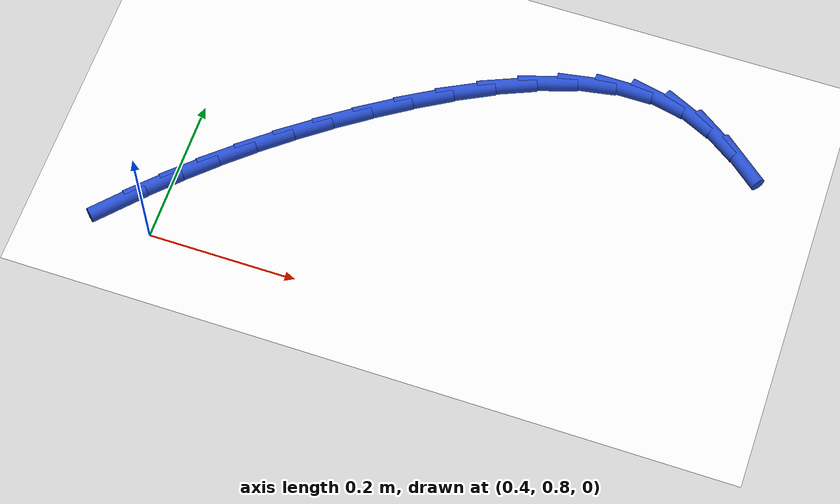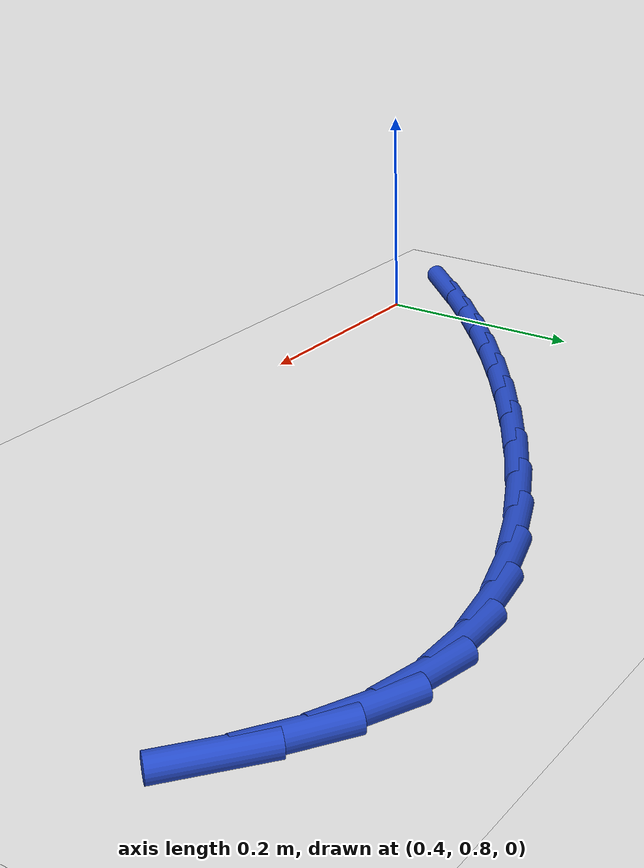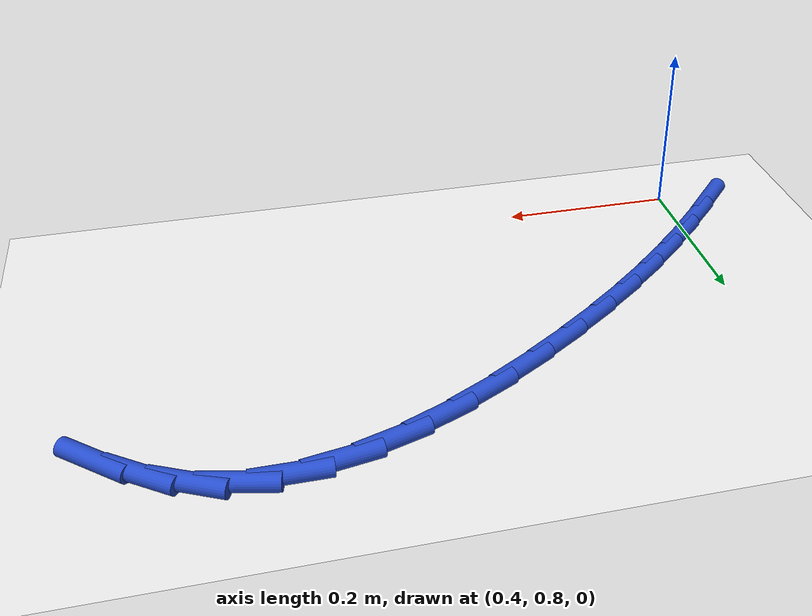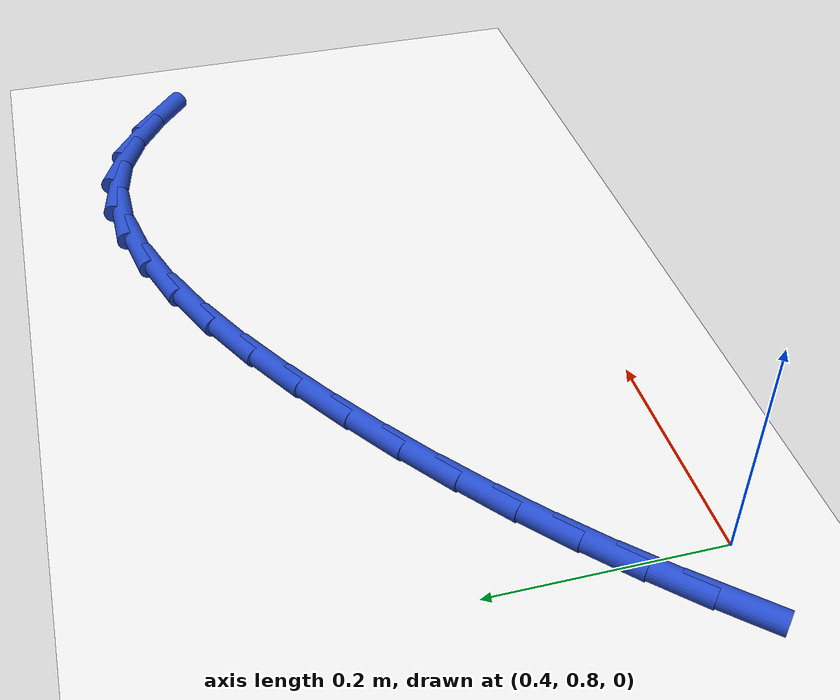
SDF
<sdf version="1.6">
 <world name="default">
  <model name="ground_plane">
   <static>1</static>
   <link name="link">
    <collision name="collision">
     <geometry><plane><normal>0 0 1</normal><size>100 100</size></plane></geometry>
     <surface><friction><ode><mu>100</mu><mu2>50</mu2></ode></friction></surface>
    </collision>
    <visual name="visual">
     <cast_shadows>0</cast_shadows>
     <geometry><plane><normal>0 0 1</normal><size>100 100</size></plane></geometry>
     <material>
      <script><uri>file://media/materials/scripts/gazebo.material</uri><name>Gazebo/WhiteGlow</name></script>
     </material>
    </visual>
   </link>
  </model>
  <model name="line">
   <link name="link_18">
    <pose>0.3453186416303858 0.826814166103038 0.01 0 1.57 0.8242871862611012</pose>
    <collision name="collision">
     <geometry><cylinder><radius>0.01</radius><length>0.08</length></cylinder></geometry>
    </collision>
    <visual name="visual">
     <material>
      <script><name>Gazebo/Blue</name><uri>file://media/materials/scripts/gazebo.material</uri></script>
     </material>
     <geometry><cylinder><radius>0.01</radius><length>0.08</length></cylinder></geometry>
    </visual>
   </link>
   <link name="link_19">
    <pose>0.3801583682014533 0.8644747823710415 0.01 0 1.57 0.7873593468600117</pose>
    <collision name="collision">
     <geometry><cylinder><radius>0.01</radius><length>0.08</length></cylinder></geometry>
    </collision>
    <visual name="visual">
     <material>
      <script><name>Gazebo/Blue</name><uri>file://media/materials/scripts/gazebo.material</uri></script>
     </material>
     <geometry><cylinder><radius>0.01</radius><length>0.08</length></cylinder></geometry>
    </visual>
   </link>
   <link name="link_20">
    <pose>0.4167065320608964 0.9011665834226212 0.01 0 1.57 0.7506752435736888</pose>
    <collision name="collision">
     <geometry><cylinder><radius>0.01</radius><length>0.08</length></cylinder></geometry>
    </collision>
    <visual name="visual">
     <material>
      <script><name>Gazebo/Blue</name><uri>file://media/materials/scripts/gazebo.material</uri></script>
     </material>
     <geometry><cylinder><radius>0.01</radius><length>0.08</length></cylinder></geometry>
    </visual>
   </link>
   <link name="link_21">
    <pose>0.4549905870882065 0.9368801904338604 0.01 0 1.57 0.7143514136931837</pose>
    <collision name="collision">
     <geometry><cylinder><radius>0.01</radius><length>0.08</length></cylinder></geometry>
    </collision>
    <visual name="visual">
     <material>
      <script><name>Gazebo/Blue</name><uri>file://media/materials/scripts/gazebo.material</uri></script>
     </material>
     <geometry><cylinder><radius>0.01</radius><length>0.08</length></cylinder></geometry>
    </visual>
   </link>
   <link name="link_22">
    <pose>0.4950379871628757 0.9716062245808422 0.01 0 1.57 0.6784973580704299</pose>
    <collision name="collision">
     <geometry><cylinder><radius>0.01</radius><length>0.08</length></cylinder></geometry>
    </collision>
    <visual name="visual">
     <material>
      <script><name>Gazebo/Blue</name><uri>file://media/materials/scripts/gazebo.material</uri></script>
     </material>
     <geometry><cylinder><radius>0.01</radius><length>0.08</length></cylinder></geometry>
    </visual>
   </link>
   <link name="link_23">
    <pose>0.5368761861643954 1.0053353070396502 0.01 0 1.57 0.6432139044689602</pose>
    <collision name="collision">
     <geometry><cylinder><radius>0.01</radius><length>0.08</length></cylinder></geometry>
    </collision>
    <visual name="visual">
     <material>
      <script><name>Gazebo/Blue</name><uri>file://media/materials/scripts/gazebo.material</uri></script>
     </material>
     <geometry><cylinder><radius>0.01</radius><length>0.08</length></cylinder></geometry>
    </visual>
   </link>
   <link name="link_24">
    <pose>0.5805326379722575 1.0380580589863673 0.01 0 1.57 0.6085919270302591</pose>
    <collision name="collision">
     <geometry><cylinder><radius>0.01</radius><length>0.08</length></cylinder></geometry>
    </collision>
    <visual name="visual">
     <material>
      <script><name>Gazebo/Blue</name><uri>file://media/materials/scripts/gazebo.material</uri></script>
     </material>
     <geometry><cylinder><radius>0.01</radius><length>0.08</length></cylinder></geometry>
    </visual>
   </link>
   <link name="link_25">
    <pose>0.6260347964659538 1.0697651015970766 0.01 0 1.57 0.5744846938816968</pose>
    <collision name="collision">
     <geometry><cylinder><radius>0.01</radius><length>0.08</length></cylinder></geometry>
    </collision>
    <visual name="visual">
     <material>
      <script><name>Gazebo/Blue</name><uri>file://media/materials/scripts/gazebo.material</uri></script>
     </material>
     <geometry><cylinder><radius>0.01</radius><length>0.08</length></cylinder></geometry>
    </visual>
   </link>
   <link name="link_26">
    <pose>0.673399442512721 1.1004249011869518 0.01 0 1.57 0.5342905004151267</pose>
    <collision name="collision">
     <geometry><cylinder><radius>0.01</radius><length>0.08</length></cylinder></geometry>
    </collision>
    <visual name="visual">
     <material>
      <script><name>Gazebo/Blue</name><uri>file://media/materials/scripts/gazebo.material</uri></script>
     </material>
     <geometry><cylinder><radius>0.01</radius><length>0.08</length></cylinder></geometry>
    </visual>
   </link>
   <link name="link_27">
    <pose>0.7223444225763069 1.1293854010199205 0.01 0 1.57 0.4789846975595859</pose>
    <collision name="collision">
     <geometry><cylinder><radius>0.01</radius><length>0.08</length></cylinder></geometry>
    </collision>
    <visual name="visual">
     <material>
      <script><name>Gazebo/Blue</name><uri>file://media/materials/scripts/gazebo.material</uri></script>
     </material>
     <geometry><cylinder><radius>0.01</radius><length>0.08</length></cylinder></geometry>
    </visual>
   </link>
   <link name="link_28">
    <pose>0.7722555397671594 1.1553052943026003 0.01 0 1.57 0.40435603368860207</pose>
    <collision name="collision">
     <geometry><cylinder><radius>0.01</radius><length>0.08</length></cylinder></geometry>
    </collision>
    <visual name="visual">
     <material>
      <script><name>Gazebo/Blue</name><uri>file://media/materials/scripts/gazebo.material</uri></script>
     </material>
     <geometry><cylinder><radius>0.01</radius><length>0.08</length></cylinder></geometry>
    </visual>
   </link>
   <link name="link_29">
    <pose>0.8225012794813981 1.176807326418911 0.01 0 1.57 0.304669524520477</pose>
    <collision name="collision">
     <geometry><cylinder><radius>0.01</radius><length>0.08</length></cylinder></geometry>
    </collision>
    <visual name="visual">
     <material>
      <script><name>Gazebo/Blue</name><uri>file://media/materials/scripts/gazebo.material</uri></script>
     </material>
     <geometry><cylinder><radius>0.01</radius><length>0.08</length></cylinder></geometry>
    </visual>
   </link>
   <link name="link_30">
    <pose>0.8724501271151436 1.1925142427527737 0.01 0 1.57 0.17237400252887308</pose>
    <collision name="collision">
     <geometry><cylinder><radius>0.01</radius><length>0.08</length></cylinder></geometry>
    </collision>
    <visual name="visual">
     <material>
      <script><name>Gazebo/Blue</name><uri>file://media/materials/scripts/gazebo.material</uri></script>
     </material>
     <geometry><cylinder><radius>0.01</radius><length>0.08</length></cylinder></geometry>
    </visual>
   </link>
   <link name="link_31">
    <pose>0.9214705680645162 1.201048788688109 0.01 0 1.57 -0.0003177183661695332</pose>
    <collision name="collision">
     <geometry><cylinder><radius>0.01</radius><length>0.08</length></cylinder></geometry>
    </collision>
    <visual name="visual">
     <material>
      <script><name>Gazebo/Blue</name><uri>file://media/materials/scripts/gazebo.material</uri></script>
     </material>
     <geometry><cylinder><radius>0.01</radius><length>0.08</length></cylinder></geometry>
    </visual>
   </link>
   <link name="link_32">
    <pose>0.9689310877256362 1.2010337096088373 0.01 0 1.57 -0.21611326726454302</pose>
    <collision name="collision">
     <geometry><cylinder><radius>0.01</radius><length>0.08</length></cylinder></geometry>
    </collision>
    <visual name="visual">
     <material>
      <script><name>Gazebo/Blue</name><uri>file://media/materials/scripts/gazebo.material</uri></script>
     </material>
     <geometry><cylinder><radius>0.01</radius><length>0.08</length></cylinder></geometry>
    </visual>
   </link>
   <link name="link_33">
    <pose>1.014201276463728 1.1910950084566505 0.01 0 1.57 -0.44000558929535444</pose>
    <collision name="collision">
     <geometry><cylinder><radius>0.01</radius><length>0.08</length></cylinder></geometry>
    </collision>
    <visual name="visual">
     <material>
      <script><name>Gazebo/Blue</name><uri>file://media/materials/scripts/gazebo.material</uri></script>
     </material>
     <geometry><cylinder><radius>0.01</radius><length>0.08</length></cylinder></geometry>
    </visual>
   </link>
   <link name="link_34">
    <pose>1.057016825440138 1.170937989385309 0.01 0 1.57 -0.5998741035629457</pose>
    <collision name="collision">
     <geometry><cylinder><radius>0.01</radius><length>0.08</length></cylinder></geometry>
    </collision>
    <visual name="visual">
     <material>
      <script><name>Gazebo/Blue</name><uri>file://media/materials/scripts/gazebo.material</uri></script>
     </material>
     <geometry><cylinder><radius>0.01</radius><length>0.08</length></cylinder></geometry>
    </visual>
   </link>
   <link name="link_35">
    <pose>1.0980071035580776 1.1429026065690335 0.01 0 1.57 -0.6933448418020439</pose>
    <collision name="collision">
     <geometry><cylinder><radius>0.01</radius><length>0.08</length></cylinder></geometry>
    </collision>
    <visual name="visual">
     <material>
      <script><name>Gazebo/Blue</name><uri>file://media/materials/scripts/gazebo.material</uri></script>
     </material>
     <geometry><cylinder><radius>0.01</radius><length>0.08</length></cylinder></geometry>
    </visual>
   </link>
  </model>
 </world>
</sdf>
